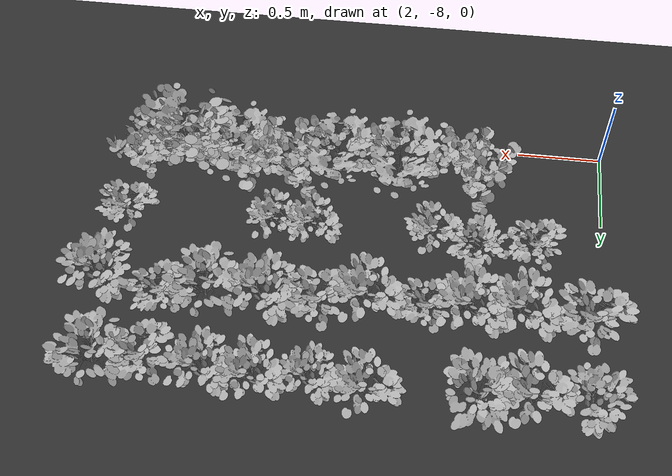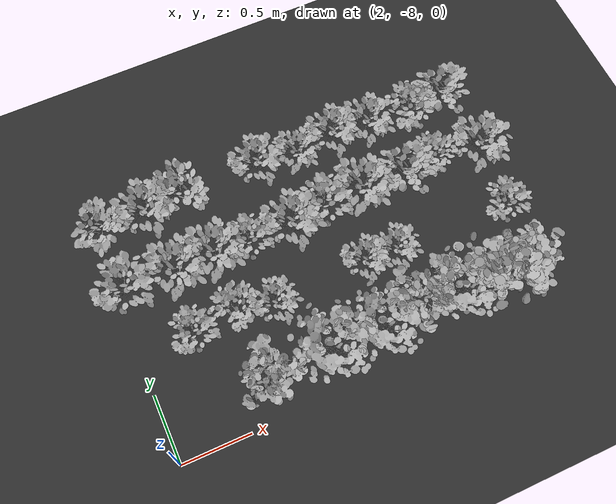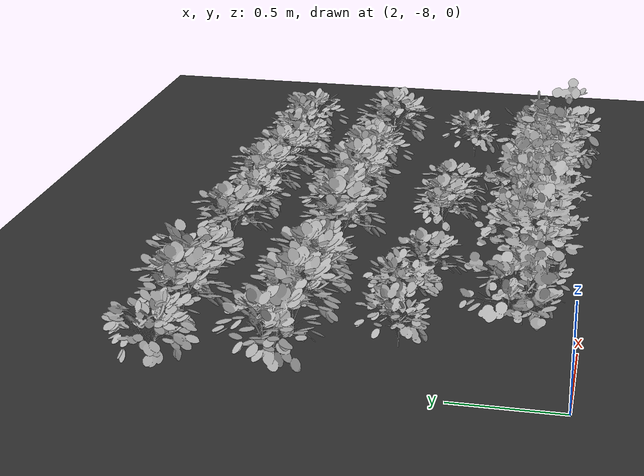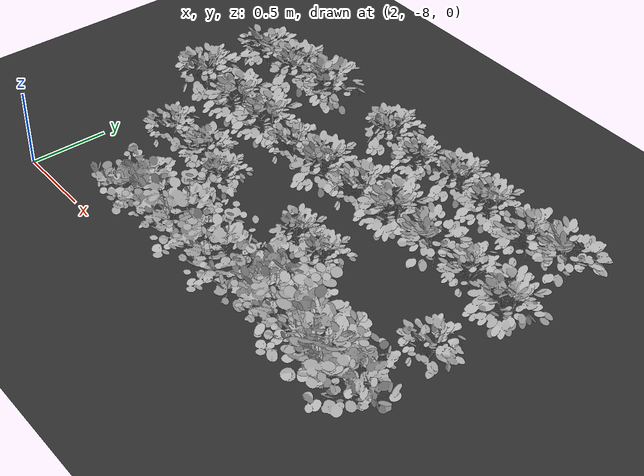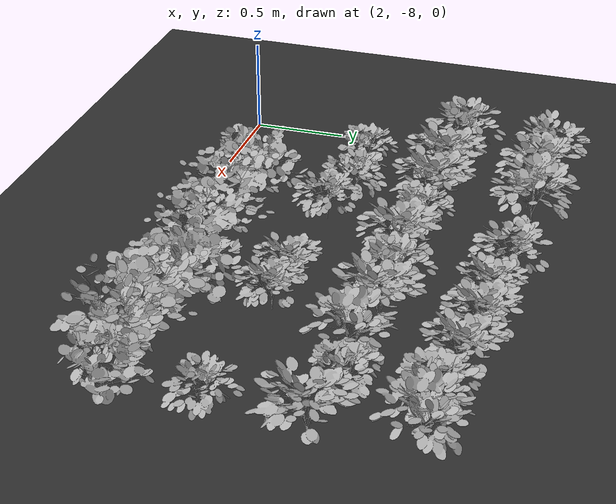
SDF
<sdf version="1.7">
 <world name="default">
  <model name="ground_plane">
   <static>1</static>
   <link name="link">
    <collision name="collision">
     <geometry><plane><normal>0 0 1</normal><size>100 100</size></plane></geometry>
     <surface>
      <contact><collide_bitmask>65535</collide_bitmask></contact>
      <friction><ode><mu>100</mu><mu2>50</mu2></ode></friction>
     </surface>
    </collision>
    <visual name="visual">
     <cast_shadows>0</cast_shadows>
     <geometry><plane><normal>0 0 1</normal><size>100 100</size></plane></geometry>
     <material>
      <ambient>0.2 0.2 0.2 1.0</ambient>
      <diffuse>0.2 0.2 0.2 1.0</diffuse>
      <specular>0.2 0.2 0.2 1.0</specular>
      <emissive>0.2 0.2 0.2 1.0</emissive>
     </material>
    </visual>
   </link>
  </model>
  <model name="ground">
   <pose>5 -0.5 0.01  3.141592654 0 0</pose>
   <static>true</static>
   <link name="body">
    <visual name="visual">
     <cast_shadows>0</cast_shadows>
     <geometry>
      <mesh><uri>file:///home/ifcosta/final_ws/src/cnn_line/worlds/models/ground.obj</uri></mesh>
     </geometry>
    </visual>
   </link>
  </model>
  <model name="plt_20008">
   <pose>2.4 -7.24 0.0127 0.0 0.0 0.013578</pose>
   <static>true</static>
   <link name="body">
    <visual name="visual">
     <geometry>
      <mesh><uri>file:///home/ifcosta/final_ws/src/cnn_line/worlds/models/plant20.obj</uri></mesh>
     </geometry>
    </visual>
   </link>
  </model>
  <model name="plt_20009">
   <pose>2.73 -7.2 0.0151 0.0 0.0 0.84642</pose>
   <static>true</static>
   <link name="body">
    <visual name="visual">
     <geometry>
      <mesh><uri>file:///home/ifcosta/final_ws/src/cnn_line/worlds/models/plant20.obj</uri></mesh>
     </geometry>
    </visual>
   </link>
  </model>
  <model name="plt_20010">
   <pose>2.98 -7.27 0.0139 0.0 0.0 -0.81675</pose>
   <static>true</static>
   <link name="body">
    <visual name="visual">
     <geometry>
      <mesh><uri>file:///home/ifcosta/final_ws/src/cnn_line/worlds/models/plant20.obj</uri></mesh>
     </geometry>
    </visual>
   </link>
  </model>
  <model name="plt_20012">
   <pose>3.68 -7.24 0.0168 0.0 0.0 -1.1972</pose>
   <static>true</static>
   <link name="body">
    <visual name="visual">
     <geometry>
      <mesh><uri>file:///home/ifcosta/final_ws/src/cnn_line/worlds/models/plant20.obj</uri></mesh>
     </geometry>
    </visual>
   </link>
  </model>
  <model name="plt_20013">
   <pose>3.91 -7.25 0.0149 0.0 0.0 -1.0897</pose>
   <static>true</static>
   <link name="body">
    <visual name="visual">
     <geometry>
      <mesh><uri>file:///home/ifcosta/final_ws/src/cnn_line/worlds/models/plant20.obj</uri></mesh>
     </geometry>
    </visual>
   </link>
  </model>
  <model name="plt_20016">
   <pose>4.79 -7.26 0.0151 0.0 0.0 -0.2023</pose>
   <static>true</static>
   <link name="body">
    <visual name="visual">
     <geometry>
      <mesh><uri>file:///home/ifcosta/final_ws/src/cnn_line/worlds/models/plant20.obj</uri></mesh>
     </geometry>
    </visual>
   </link>
  </model>
  <model name="plt_20041">
   <pose>2.08 -6.76 0.0162 0.0 0.0 1.0447</pose>
   <static>true</static>
   <link name="body">
    <visual name="visual">
     <geometry>
      <mesh><uri>file:///home/ifcosta/final_ws/src/cnn_line/worlds/models/plant22.obj</uri></mesh>
     </geometry>
    </visual>
   </link>
  </model>
  <model name="plt_20042">
   <pose>2.45 -6.76 0.0149 0.0 0.0 0.053975</pose>
   <static>true</static>
   <link name="body">
    <visual name="visual">
     <geometry>
      <mesh><uri>file:///home/ifcosta/final_ws/src/cnn_line/worlds/models/plant22.obj</uri></mesh>
     </geometry>
    </visual>
   </link>
  </model>
  <model name="plt_20043">
   <pose>2.74 -6.75 0.0141 0.0 0.0 0.0726</pose>
   <static>true</static>
   <link name="body">
    <visual name="visual">
     <geometry>
      <mesh><uri>file:///home/ifcosta/final_ws/src/cnn_line/worlds/models/plant22.obj</uri></mesh>
     </geometry>
    </visual>
   </link>
  </model>
  <model name="plt_20044">
   <pose>3.0 -6.77 0.0157 0.0 0.0 -0.073124</pose>
   <static>true</static>
   <link name="body">
    <visual name="visual">
     <geometry>
      <mesh><uri>file:///home/ifcosta/final_ws/src/cnn_line/worlds/models/plant20.obj</uri></mesh>
     </geometry>
    </visual>
   </link>
  </model>
  <model name="plt_20045">
   <pose>3.32 -6.77 0.0137 0.0 0.0 0.39394</pose>
   <static>true</static>
   <link name="body">
    <visual name="visual">
     <geometry>
      <mesh><uri>file:///home/ifcosta/final_ws/src/cnn_line/worlds/models/plant22.obj</uri></mesh>
     </geometry>
    </visual>
   </link>
  </model>
  <model name="plt_20046">
   <pose>3.6 -6.74 0.0158 0.0 0.0 0.62963</pose>
   <static>true</static>
   <link name="body">
    <visual name="visual">
     <geometry>
      <mesh><uri>file:///home/ifcosta/final_ws/src/cnn_line/worlds/models/plant21.obj</uri></mesh>
     </geometry>
    </visual>
   </link>
  </model>
  <model name="plt_20047">
   <pose>3.9 -6.72 0.0159 0.0 0.0 -0.15812</pose>
   <static>true</static>
   <link name="body">
    <visual name="visual">
     <geometry>
      <mesh><uri>file:///home/ifcosta/final_ws/src/cnn_line/worlds/models/plant22.obj</uri></mesh>
     </geometry>
    </visual>
   </link>
  </model>
  <model name="plt_20048">
   <pose>4.25 -6.74 0.0164 0.0 0.0 -1.8725</pose>
   <static>true</static>
   <link name="body">
    <visual name="visual">
     <geometry>
      <mesh><uri>file:///home/ifcosta/final_ws/src/cnn_line/worlds/models/plant22.obj</uri></mesh>
     </geometry>
    </visual>
   </link>
  </model>
  <model name="plt_20049">
   <pose>4.5 -6.71 0.014 0.0 0.0 0.39156</pose>
   <static>true</static>
   <link name="body">
    <visual name="visual">
     <geometry>
      <mesh><uri>file:///home/ifcosta/final_ws/src/cnn_line/worlds/models/plant20.obj</uri></mesh>
     </geometry>
    </visual>
   </link>
  </model>
  <model name="plt_20050">
   <pose>4.84 -6.76 0.0147 0.0 0.0 -0.11169</pose>
   <static>true</static>
   <link name="body">
    <visual name="visual">
     <geometry>
      <mesh><uri>file:///home/ifcosta/final_ws/src/cnn_line/worlds/models/plant22.obj</uri></mesh>
     </geometry>
    </visual>
   </link>
  </model>
  <model name="plt_20075">
   <pose>2.07 -6.25 0.0153 0.0 0.0 -1.4833</pose>
   <static>true</static>
   <link name="body">
    <visual name="visual">
     <geometry>
      <mesh><uri>file:///home/ifcosta/final_ws/src/cnn_line/worlds/models/plant21.obj</uri></mesh>
     </geometry>
    </visual>
   </link>
  </model>
  <model name="plt_20076">
   <pose>2.4 -6.26 0.0146 0.0 0.0 0.56914</pose>
   <static>true</static>
   <link name="body">
    <visual name="visual">
     <geometry>
      <mesh><uri>file:///home/ifcosta/final_ws/src/cnn_line/worlds/models/plant22.obj</uri></mesh>
     </geometry>
    </visual>
   </link>
  </model>
  <model name="plt_20077">
   <pose>2.7 -6.24 0.0145 0.0 0.0 -3.2251</pose>
   <static>true</static>
   <link name="body">
    <visual name="visual">
     <geometry>
      <mesh><uri>file:///home/ifcosta/final_ws/src/cnn_line/worlds/models/plant22.obj</uri></mesh>
     </geometry>
    </visual>
   </link>
  </model>
  <model name="plt_20079">
   <pose>3.28 -6.22 0.0128 0.0 0.0 -0.051346</pose>
   <static>true</static>
   <link name="body">
    <visual name="visual">
     <geometry>
      <mesh><uri>file:///home/ifcosta/final_ws/src/cnn_line/worlds/models/plant21.obj</uri></mesh>
     </geometry>
    </visual>
   </link>
  </model>
  <model name="plt_20080">
   <pose>3.59 -6.25 0.0123 0.0 0.0 -1.5539</pose>
   <static>true</static>
   <link name="body">
    <visual name="visual">
     <geometry>
      <mesh><uri>file:///home/ifcosta/final_ws/src/cnn_line/worlds/models/plant20.obj</uri></mesh>
     </geometry>
    </visual>
   </link>
  </model>
  <model name="plt_20081">
   <pose>3.89 -6.22 0.0166 0.0 0.0 -0.32431</pose>
   <static>true</static>
   <link name="body">
    <visual name="visual">
     <geometry>
      <mesh><uri>file:///home/ifcosta/final_ws/src/cnn_line/worlds/models/plant21.obj</uri></mesh>
     </geometry>
    </visual>
   </link>
  </model>
  <model name="plt_20082">
   <pose>4.17 -6.24 0.0134 0.0 0.0 -0.54973</pose>
   <static>true</static>
   <link name="body">
    <visual name="visual">
     <geometry>
      <mesh><uri>file:///home/ifcosta/final_ws/src/cnn_line/worlds/models/plant21.obj</uri></mesh>
     </geometry>
    </visual>
   </link>
  </model>
  <model name="plt_20083">
   <pose>4.52 -6.29 0.014 0.0 0.0 1.0593</pose>
   <static>true</static>
   <link name="body">
    <visual name="visual">
     <geometry>
      <mesh><uri>file:///home/ifcosta/final_ws/src/cnn_line/worlds/models/plant21.obj</uri></mesh>
     </geometry>
    </visual>
   </link>
  </model>
  <model name="plt_20084">
   <pose>4.79 -6.25 0.0162 0.0 0.0 -1.8713</pose>
   <static>true</static>
   <link name="body">
    <visual name="visual">
     <geometry>
      <mesh><uri>file:///home/ifcosta/final_ws/src/cnn_line/worlds/models/plant22.obj</uri></mesh>
     </geometry>
    </visual>
   </link>
  </model>
  <model name="plt_30179">
   <pose>2.7 -7.74 0.0136 0.0 0.0 2.0284</pose>
   <static>true</static>
   <link name="body">
    <visual name="visual">
     <geometry>
      <mesh><uri>file:///home/ifcosta/final_ws/src/cnn_line/worlds/models/plant34.obj</uri></mesh>
     </geometry>
    </visual>
   </link>
  </model>
  <model name="plt_30181">
   <pose>3.23 -7.74 0.0144 0.0 0.0 1.1858</pose>
   <static>true</static>
   <link name="body">
    <visual name="visual">
     <geometry>
      <mesh><uri>file:///home/ifcosta/final_ws/src/cnn_line/worlds/models/plant32.obj</uri></mesh>
     </geometry>
    </visual>
   </link>
  </model>
  <model name="plt_30182">
   <pose>3.61 -7.75 0.0136 0.0 0.0 -0.012176</pose>
   <static>true</static>
   <link name="body">
    <visual name="visual">
     <geometry>
      <mesh><uri>file:///home/ifcosta/final_ws/src/cnn_line/worlds/models/plant35.obj</uri></mesh>
     </geometry>
    </visual>
   </link>
  </model>
  <model name="plt_30183">
   <pose>3.88 -7.71 0.0134 0.0 0.0 -1.8958</pose>
   <static>true</static>
   <link name="body">
    <visual name="visual">
     <geometry>
      <mesh><uri>file:///home/ifcosta/final_ws/src/cnn_line/worlds/models/plant33.obj</uri></mesh>
     </geometry>
    </visual>
   </link>
  </model>
  <model name="plt_30184">
   <pose>4.21 -7.74 0.0164 0.0 0.0 0.021294</pose>
   <static>true</static>
   <link name="body">
    <visual name="visual">
     <geometry>
      <mesh><uri>file:///home/ifcosta/final_ws/src/cnn_line/worlds/models/plant35.obj</uri></mesh>
     </geometry>
    </visual>
   </link>
  </model>
  <model name="plt_30185">
   <pose>4.5 -7.76 0.0145 0.0 0.0 -0.4965</pose>
   <static>true</static>
   <link name="body">
    <visual name="visual">
     <geometry>
      <mesh><uri>file:///home/ifcosta/final_ws/src/cnn_line/worlds/models/plant30.obj</uri></mesh>
     </geometry>
    </visual>
   </link>
  </model>
  <model name="plt_30186">
   <pose>4.79 -7.72 0.0155 0.0 0.0 -1.424</pose>
   <static>true</static>
   <link name="body">
    <visual name="visual">
     <geometry>
      <mesh><uri>file:///home/ifcosta/final_ws/src/cnn_line/worlds/models/plant34.obj</uri></mesh>
     </geometry>
    </visual>
   </link>
  </model>
 </world>
</sdf>
